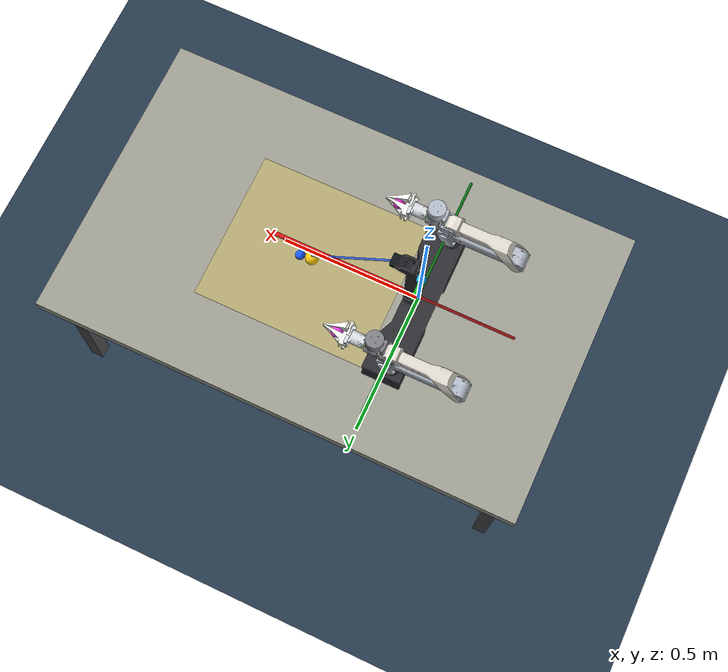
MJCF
<?xml version='1.0' encoding='utf-8'?>
<mujoco model="arx_acone_table_camera_scene">
  <compiler angle="radian" meshdir="meshes" autolimits="true" />
  <option timestep="0.002" gravity="0 0 -9.81" />
  <statistic center="0.22 0 0.22" extent="1.2" />
  <visual>
    <headlight ambient="0.35 0.35 0.35" diffuse="0.65 0.65 0.65" specular="0.15 0.15 0.15" />
    <rgba haze="0.30 0.45 0.65 1" />
    <global azimuth="145" elevation="-25" offwidth="1280" offheight="720" />
  </visual>
  <asset>
    <texture name="skybox" type="skybox" builtin="gradient" rgb1="0.30 0.50 0.70" rgb2="0 0 0" width="32" height="512" />
    <texture name="grid" type="2d" builtin="checker" rgb1="0.20 0.30 0.40" rgb2="0.10 0.15 0.20" width="512" height="512" mark="cross" markrgb="0.8 0.8 0.8" />
    <material name="floor_mat" texture="grid" texrepeat="2 2" texuniform="true" reflectance="0.2" />
    <material name="table_mat" rgba="0.62 0.62 0.58 1" />
    <material name="table_leg_mat" rgba="0.30 0.30 0.32 1" />
    <material name="workspace_mat" rgba="1 0.82 0.12 0.25" />
    <mesh name="base_link_mesh" file="base_link.STL" />
    <mesh name="left_link1_mesh" file="left_link1.STL" />
    <mesh name="left_link2_mesh" file="left_link2.STL" />
    <mesh name="left_link3_mesh" file="left_link3.STL" />
    <mesh name="left_link4_mesh" file="left_link4.STL" />
    <mesh name="left_link5_mesh" file="left_link5.STL" />
    <mesh name="left_link6_mesh" file="left_link6.STL" />
    <mesh name="left_link7_mesh" file="left_link7.STL" />
    <mesh name="left_link8_mesh" file="left_link8.STL" />
    <mesh name="right_link11_mesh" file="right_link11.STL" />
    <mesh name="right_link12_mesh" file="right_link12.STL" />
    <mesh name="right_link13_mesh" file="right_link13.STL" />
    <mesh name="right_link14_mesh" file="right_link14.STL" />
    <mesh name="right_link15_mesh" file="right_link15.STL" />
    <mesh name="right_link16_mesh" file="right_link16.STL" />
    <mesh name="right_link17_mesh" file="right_link17.STL" />
    <mesh name="right_link18_mesh" file="right_link18.STL" />
  </asset>
  <worldbody>
    <light name="key_light" pos="0.7 -0.8 1.2" dir="-0.5 0.4 -1" diffuse="0.8 0.8 0.8" />
    <geom name="floor" type="plane" pos="0 0 -0.785" size="0 0 0.05" material="floor_mat" />
    <geom name="table_top" type="box" pos="0.3 0 -0.11" size="0.9 0.55 0.025" material="table_mat" />
    <geom name="table_leg_0" type="box" pos="-0.52 -0.47 -0.46" size="0.025 0.025 0.325" material="table_leg_mat" />
    <geom name="table_leg_1" type="box" pos="-0.52 0.47 -0.46" size="0.025 0.025 0.325" material="table_leg_mat" />
    <geom name="table_leg_2" type="box" pos="1.12 -0.47 -0.46" size="0.025 0.025 0.325" material="table_leg_mat" />
    <geom name="table_leg_3" type="box" pos="1.12 0.47 -0.46" size="0.025 0.025 0.325" material="table_leg_mat" />
    <geom name="front_workspace_patch" type="box" pos="0.4 0 -0.083" size="0.32 0.28 0.002" material="workspace_mat" contype="0" conaffinity="0" />
    <geom name="base_plus_x_forward_axis" type="capsule" fromto="0 0 0.025 0.55 0 0.025" size="0.008" rgba="0.9 0.1 0.1 1" />
    <geom name="base_minus_x_axis" type="capsule" fromto="0 0 0.025 -0.35 0 0.025" size="0.005" rgba="0.55 0.05 0.05 1" />
    <geom name="base_plus_y_axis" type="capsule" fromto="0 0 0.035 0 0.45 0.035" size="0.008" rgba="0.1 0.75 0.15 1" />
    <geom name="base_minus_y_axis" type="capsule" fromto="0 0 0.035 0 -0.45 0.035" size="0.005" rgba="0.05 0.45 0.08 1" />
    <site name="robot_front_workspace_xpos" pos="0.4 0 -0.06" size="0.025" rgba="1 0.8 0.05 1" />
    <camera name="ego_camera_calibrated" pos="0.0961863697 0 0.265347436" xyaxes="0 1 0 -0.707106781 0 -0.707106781" fovy="62.865" />
    <body name="camera_body" pos="0.0961863697 0 0.265347436">
      <geom name="camera_box" type="box" size="0.012 0.020 0.014" rgba="0.05 0.08 0.10 1" contype="0" conaffinity="0" />
    </body>
    <geom name="camera_optical_axis" type="capsule" fromto="0.0961863697 0 0.265347436 0.446533806 0 -0.085" size="0.004" rgba="0.1 0.35 1 0.75" />
    <site name="camera_forward_target" pos="0.446533806 0 -0.085" size="0.018" rgba="0.1 0.35 1 1" />
    <body name="base_link" pos="0 0 0" quat="1 0 0 0">
      <inertial pos="0.0040185 3.8157e-05 -0.024465" mass="5.6137" fullinertia="0.21931087 0.02598322 0.20840406 4.92e-06 -0.00198722 -2.28e-06" />
      <geom name="base_link_visual" type="mesh" mesh="base_link_mesh" pos="0 0 0" quat="1 0 0 0" rgba="0.18 0.18 0.20 1" contype="0" conaffinity="0" />
      <body name="left_link1" pos="-0.01602 0.25 0.0215" quat="1 0 0 0">
        <joint name="left_joint1" type="hinge" axis="0 0 1" damping="1.0" armature="0.02" limited="true" range="-2.094 3.1416" />
        <inertial pos="0.0054231 -0.0080289 0.017086" mass="0.066982" fullinertia="8.086e-05 3.211e-05 7.702e-05 2.07e-06 -8.76e-06 4.4e-06" />
        <geom name="left_link1_visual" type="mesh" mesh="left_link1_mesh" pos="0 0 0" quat="1 0 0 0" rgba="0.82 0.84 0.90 1" contype="0" conaffinity="0" />
        <body name="left_link2" pos="0.02 0 0.04" quat="1 0 0 0">
          <joint name="left_joint2" type="hinge" axis="0 1 0" damping="1.0" armature="0.02" limited="true" range="0 3.665" />
          <inertial pos="-0.13234 -0.0040166 0.00010941" mass="1.1068" fullinertia="0.00054299 0.01652639 0.01654931 -1.84e-06 3.884e-05 -3.5e-07" />
          <geom name="left_link2_visual" type="mesh" mesh="left_link2_mesh" pos="0 0 0" quat="1 0 0 0" rgba="0.70 0.73 0.78 1" contype="0" conaffinity="0" />
          <body name="left_link3" pos="-0.264 3e-05 0" quat="1 0 0 0">
            <joint name="left_joint3" type="hinge" axis="0 -1 0" damping="1.0" armature="0.02" limited="true" range="0 3.24" />
            <inertial pos="0.18544 -0.00071369 0.051628" mass="0.54316" fullinertia="0.00036398 0.0042277 0.00419421 -2.814e-05 -0.00039418 -1.179e-05" />
            <geom name="left_link3_visual" type="mesh" mesh="left_link3_mesh" pos="0 0 0" quat="1 0 0 0" rgba="0.88 0.86 0.82 1" contype="0" conaffinity="0" />
            <body name="left_link4" pos="0.245 -3e-05 0.056" quat="1 0 0 0">
              <joint name="left_joint4" type="hinge" axis="0 -1 0" damping="1.0" armature="0.02" limited="true" range="-1.571 1.571" />
              <inertial pos="0.039966 -0.0043045 0.035006" mass="0.11827" fullinertia="0.00019329 0.00023401 0.00014391 -1.619e-05 -8.654e-05 -1.744e-05" />
              <geom name="left_link4_visual" type="mesh" mesh="left_link4_mesh" pos="0 0 0" quat="1 0 0 0" rgba="0.50 0.50 0.52 1" contype="0" conaffinity="0" />
              <body name="left_link5" pos="0.06775 0 0.0845" quat="1 0 0 0">
                <joint name="left_joint5" type="hinge" axis="0 0 -1" damping="1.0" armature="0.02" limited="true" range="-1.571 1.571" />
                <inertial pos="0.0029491 8.4086e-05 -0.054795" mass="0.67398" fullinertia="0.00092704 0.00091568 0.00028327 4.9e-07 4.559e-05 5.3e-07" />
                <geom name="left_link5_visual" type="mesh" mesh="left_link5_mesh" pos="0 0 0" quat="1 0 0 0" rgba="0.62 0.63 0.64 1" contype="0" conaffinity="0" />
                <body name="left_link6" pos="0.02895 0 -0.0845" quat="1 0 0 0">
                  <joint name="left_joint6" type="hinge" axis="1 0 0" damping="1.0" armature="0.02" limited="true" range="-2.094 2.094" />
                  <inertial pos="0.041111 3.9625e-05 8.8872e-05" mass="0.30223" fullinertia="0.00016075 0.0001743 0.00017329 -4e-07 3.2e-07 -3.381e-05" />
                  <geom name="left_link6_visual" type="mesh" mesh="left_link6_mesh" pos="0 0 0" quat="1 0 0 0" rgba="0.86 0.88 0.90 1" contype="0" conaffinity="0" />
                  <site name="left_flange" pos="0 0 0" size="0.018" rgba="0.15 0.95 0.25 1" />
                  <site name="left_tcp" pos="0.105 0.0018 -0.0063" size="0.020" rgba="0.95 0.15 0.85 1" />
                  <site name="tcp" pos="0.105 0.0018 -0.0063" size="0.022" rgba="1 0.25 0.95 1" />
                  <body name="left_link7" pos="0.08397 0.02721 -0.0062702" quat="1 0 0 0">
                    <joint name="left_joint7" type="slide" axis="0 1 0" limited="true" range="0 0.044" damping="2.0" armature="0.002" />
                    <inertial pos="-0.0053495 -0.016391 0.019659" mass="0.080996" fullinertia="6.262e-05 5.475e-05 6.673e-05 -4.33e-06 1.409e-05 7.24e-06" />
                    <geom name="left_link7_visual" type="mesh" mesh="left_link7_mesh" pos="0 0 0" quat="1 0 0 0" rgba="0.94 0.94 0.92 1" contype="0" conaffinity="0" />
                  </body>
                  <body name="left_link8" pos="0.08397 -0.023638 -0.0062703" quat="1 0 0 0">
                    <joint name="left_joint8" type="slide" axis="0 -1 0" limited="true" range="0 0.044" damping="2.0" armature="0.002" />
                    <inertial pos="-0.0053495 0.016395 -0.0086572" mass="0.080996" fullinertia="5.91e-05 5.122e-05 6.673e-05 4.33e-06 -1.374e-05 5.38e-06" />
                    <geom name="left_link8_visual" type="mesh" mesh="left_link8_mesh" pos="0 0 0" quat="1 0 0 0" rgba="0.94 0.94 0.92 1" contype="0" conaffinity="0" />
                  </body>
                </body>
              </body>
            </body>
          </body>
        </body>
      </body>
      <body name="right_link11" pos="-0.01602 -0.25 0.0215" quat="1 0 0 0">
        <joint name="right_joint11" type="hinge" axis="0 0 1" damping="1.0" armature="0.02" limited="true" range="-2.094 3.1416" />
        <inertial pos="0.0054231 -0.0080289 0.017086" mass="0.066982" fullinertia="8.086e-05 3.211e-05 7.702e-05 2.07e-06 -8.76e-06 4.4e-06" />
        <geom name="right_link11_visual" type="mesh" mesh="right_link11_mesh" pos="0 0 0" quat="1 0 0 0" rgba="0.82 0.84 0.90 1" contype="0" conaffinity="0" />
        <body name="right_link12" pos="0.02 0 0.04" quat="1 0 0 0">
          <joint name="right_joint12" type="hinge" axis="0 1 0" damping="1.0" armature="0.02" limited="true" range="0 3.665" />
          <inertial pos="-0.13234 -0.0040166 0.00010941" mass="1.1068" fullinertia="0.00054299 0.01652639 0.01654931 -1.84e-06 3.884e-05 -3.5e-07" />
          <geom name="right_link12_visual" type="mesh" mesh="right_link12_mesh" pos="0 0 0" quat="1 0 0 0" rgba="0.70 0.73 0.78 1" contype="0" conaffinity="0" />
          <body name="right_link13" pos="-0.264 3e-05 0" quat="1 0 0 0">
            <joint name="right_joint13" type="hinge" axis="0 -1 0" damping="1.0" armature="0.02" limited="true" range="0 3.24" />
            <inertial pos="0.18544 -0.00071369 0.051628" mass="0.54316" fullinertia="0.00036398 0.0042277 0.00419421 -2.814e-05 -0.00039418 -1.179e-05" />
            <geom name="right_link13_visual" type="mesh" mesh="right_link13_mesh" pos="0 0 0" quat="1 0 0 0" rgba="0.88 0.86 0.82 1" contype="0" conaffinity="0" />
            <body name="right_link14" pos="0.245 -3e-05 0.056" quat="1 0 0 0">
              <joint name="right_joint14" type="hinge" axis="0 -1 0" damping="1.0" armature="0.02" limited="true" range="-1.571 1.571" />
              <inertial pos="0.039966 -0.0043045 0.035006" mass="0.11827" fullinertia="0.00019329 0.00023401 0.00014391 -1.619e-05 -8.654e-05 -1.744e-05" />
              <geom name="right_link14_visual" type="mesh" mesh="right_link14_mesh" pos="0 0 0" quat="1 0 0 0" rgba="0.70 0.73 0.78 1" contype="0" conaffinity="0" />
              <body name="right_link15" pos="0.06775 0 0.0845" quat="1 0 0 0">
                <joint name="right_joint15" type="hinge" axis="0 0 -1" damping="1.0" armature="0.02" limited="true" range="-1.571 1.571" />
                <inertial pos="0.0029491 8.4086e-05 -0.054795" mass="0.67398" fullinertia="0.00092704 0.00091568 0.00028327 4.9e-07 4.559e-05 5.3e-07" />
                <geom name="right_link15_visual" type="mesh" mesh="right_link15_mesh" pos="0 0 0" quat="1 0 0 0" rgba="0.62 0.63 0.64 1" contype="0" conaffinity="0" />
                <body name="right_link16" pos="0.02895 0 -0.0845" quat="1 0 0 0">
                  <joint name="right_joint16" type="hinge" axis="1 0 0" damping="1.0" armature="0.02" limited="true" range="-2.094 2.094" />
                  <inertial pos="0.041111 3.9625e-05 8.8872e-05" mass="0.30223" fullinertia="0.00016075 0.0001743 0.00017329 -4e-07 3.2e-07 -3.381e-05" />
                  <geom name="right_link16_visual" type="mesh" mesh="right_link16_mesh" pos="0 0 0" quat="1 0 0 0" rgba="0.86 0.88 0.90 1" contype="0" conaffinity="0" />
                  <site name="right_flange" pos="0 0 0" size="0.018" rgba="0.15 0.95 0.25 1" />
                  <site name="right_tcp" pos="0.105 0.0018 -0.0063" size="0.020" rgba="0.95 0.15 0.85 1" />
                  <body name="right_link17" pos="0.08397 0.02721 -0.0062702" quat="1 0 0 0">
                    <joint name="right_joint17" type="slide" axis="0 1 0" limited="true" range="0 0.044" damping="2.0" armature="0.002" />
                    <inertial pos="-0.0053495 -0.016391 0.019659" mass="0.080996" fullinertia="6.262e-05 5.475e-05 6.673e-05 -4.33e-06 1.409e-05 7.24e-06" />
                    <geom name="right_link17_visual" type="mesh" mesh="right_link17_mesh" pos="0 0 0" quat="1 0 0 0" rgba="0.94 0.94 0.92 1" contype="0" conaffinity="0" />
                  </body>
                  <body name="right_link18" pos="0.08397 -0.023638 -0.0062703" quat="1 0 0 0">
                    <joint name="right_joint18" type="slide" axis="0 -1 0" limited="true" range="0 0.044" damping="2.0" armature="0.002" />
                    <inertial pos="-0.0053495 0.016395 -0.0086572" mass="0.080996" fullinertia="5.91e-05 5.122e-05 6.673e-05 4.33e-06 -1.374e-05 5.38e-06" />
                    <geom name="right_link18_visual" type="mesh" mesh="right_link18_mesh" pos="0 0 0" quat="1 0 0 0" rgba="0.94 0.94 0.92 1" contype="0" conaffinity="0" />
                  </body>
                </body>
              </body>
            </body>
          </body>
        </body>
      </body>
    </body>
    <body name="humanego_eef_marker" mocap="true" pos="0 0 0.2" quat="1 0 0 0">
      <geom name="humanego_eef_origin" type="sphere" size="0.018" rgba="0.05 0.75 1 1" contype="0" conaffinity="0" />
      <geom name="humanego_eef_x_axis" type="capsule" fromto="0 0 0 0.075 0 0" size="0.005" rgba="1 0.05 0.05 1" contype="0" conaffinity="0" />
      <geom name="humanego_eef_y_axis" type="capsule" fromto="0 0 0 0 0.075 0" size="0.005" rgba="0.05 0.8 0.1 1" contype="0" conaffinity="0" />
      <geom name="humanego_eef_z_axis" type="capsule" fromto="0 0 0 0 0 0.075" size="0.005" rgba="0.1 0.3 1 1" contype="0" conaffinity="0" />
    </body>
  </worldbody>
  <actuator>
    <position name="left_joint1_pos" joint="left_joint1" kp="80" ctrlrange="-2.094 3.1416" />
    <position name="left_joint2_pos" joint="left_joint2" kp="80" ctrlrange="0 3.665" />
    <position name="left_joint3_pos" joint="left_joint3" kp="80" ctrlrange="0 3.24" />
    <position name="left_joint4_pos" joint="left_joint4" kp="80" ctrlrange="-1.571 1.571" />
    <position name="left_joint5_pos" joint="left_joint5" kp="80" ctrlrange="-1.571 1.571" />
    <position name="left_joint6_pos" joint="left_joint6" kp="80" ctrlrange="-2.094 2.094" />
    <position name="left_joint7_pos" joint="left_joint7" kp="40" ctrlrange="0 0.044" />
    <position name="left_joint8_pos" joint="left_joint8" kp="40" ctrlrange="0 0.044" />
    <position name="right_joint11_pos" joint="right_joint11" kp="80" ctrlrange="-2.094 3.1416" />
    <position name="right_joint12_pos" joint="right_joint12" kp="80" ctrlrange="0 3.665" />
    <position name="right_joint13_pos" joint="right_joint13" kp="80" ctrlrange="0 3.24" />
    <position name="right_joint14_pos" joint="right_joint14" kp="80" ctrlrange="-1.571 1.571" />
    <position name="right_joint15_pos" joint="right_joint15" kp="80" ctrlrange="-1.571 1.571" />
    <position name="right_joint16_pos" joint="right_joint16" kp="80" ctrlrange="-2.094 2.094" />
    <position name="right_joint17_pos" joint="right_joint17" kp="40" ctrlrange="0 0.044" />
    <position name="right_joint18_pos" joint="right_joint18" kp="40" ctrlrange="0 0.044" />
  </actuator>
  <keyframe>
    <key name="open" qpos="0 0 0 0 0 0 0.044 0.044 0 0 0 0 0 0 0.044 0.044" ctrl="0 0 0 0 0 0 0.044 0.044 0 0 0 0 0 0 0.044 0.044" />
  </keyframe>
</mujoco>
